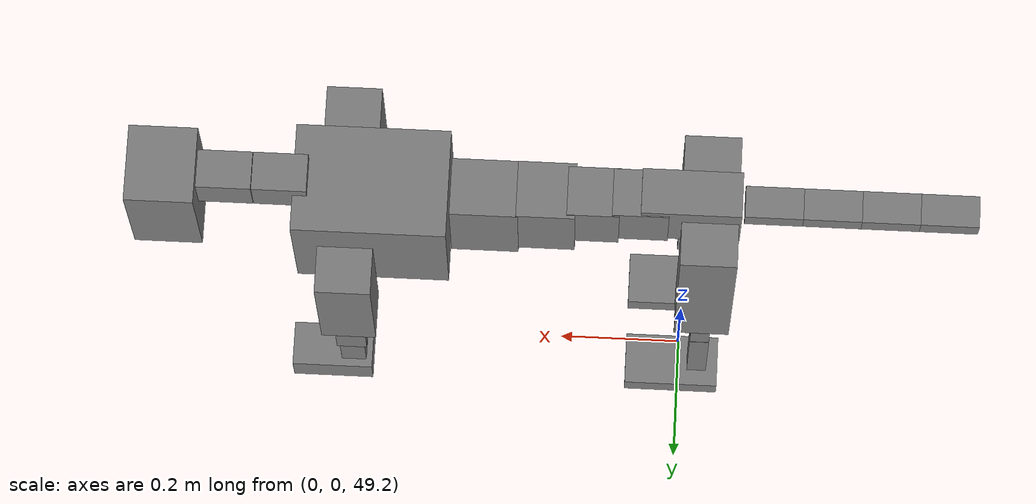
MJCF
<mujoco model="dog">

    <default>
        <joint armature="0.02" stiffness="1" damping="0.2" limited="true"/>
        <geom condim="3" friction="1 0.05 0.05" margin="0.01"/>
        <motor ctrllimited="true" ctrlrange="-1.0 1.0" forcelimited="true" gear="50"/>
    </default>

    <compiler inertiafromgeom="true" angle="radian"/>

    <option timestep="0.016" iterations="50" tolerance="1e-10" solver="Newton" jacobian="dense" cone="pyramidal"/>

    <size nconmax="20000" njmax="60000" nstack="5000000"/>
    <visual>
        <map force="0.1" zfar="30"/>
        <rgba haze="0.15 0.25 0.35 1"/>
        <quality shadowsize="2048"/>
        <global offwidth="800" offheight="800"/>
    </visual>

    <asset>
        <texture type="skybox" builtin="gradient" rgb1="0.3 0.5 0.7" rgb2="0 0 0" width="512" height="512"/>
        <texture name="texplane" type="2d" builtin="checker" rgb1=".2 .3 .4" rgb2=".1 0.15 0.2" width="512" height="512"
                 mark="cross" markrgb=".8 .8 .8"/>
        <texture name="texgeom" type="cube" builtin="flat" mark="cross" width="127" height="1278" rgb1="0.8 0.6 0.4"
                 rgb2="0.8 0.6 0.4" markrgb="1 1 1" random="0.01"/>

        <material name="matplane" reflectance="0.3" texture="texplane" texrepeat="1 1" texuniform="true"/>
        <material name="matgeom" texture="texgeom" texuniform="true" rgba="0.8 0.6 .4 1"/>
    </asset>

    <worldbody>
        <geom name="floor" pos="0 0 0" size="0 0 .25" type="plane" material="matplane" condim="3"/>

        <light directional="false" diffuse=".2 .2 .2" specular="0 0 0" pos="0 0 5" dir="0 0 -1" castshadow="false"/>
        <light mode="targetbodycom" target="torso" directional="false" diffuse=".8 .8 .8" specular="0.3 0.3 0.3"
               pos="0 0 4.0" dir="0 0 -1"/>

        <body name="root" pos="0 0 50">
            <freejoint name="root_1"/>
            <geom type="box" pos="0 0 -0.02" size="0.0774  0.0358  0.063" density="2030"/>

            <body name="spine1" pos="0.054 0 0">
                <joint name="spine1_y" axis="0 1 0" range="0 0.7" limited="true"/>
                <geom type="box" pos="0.02375 0 -0.03" size="0.04375  0.0375  0.05985" density="2030"/>

                <body name="spine2" pos="0.0612 0 0">
                    <joint name="spine2_y" axis="0 1 0" range="-0.15 0.15" limited="true"/>
                    <geom type="box" pos="0.03555  0  -0.04" size="0.04055  0.039  0.06615" density="2030"/>

                    <body name="spine3" pos="0.0730 0 0">
                        <joint name="spine3_y" axis="0 1 0" range="-0.15 0.15" limited="true"/>
                        <geom type="box" pos="0.03555  0  -0.057" size="0.04555  0.0445  0.081" density="2030"/>

                        <body name="spine4" pos="0.0780 0 0">
                            <joint name="spine4_y" axis="0 1 0" range="-0.15 0.15" limited="true"/>
                            <geom type="box" pos="0.05265  0  -0.07" size="0.05265  0.045  0.09135" density="2030"/>

                            <body name="torso" pos="0.1082 0 0">
                                <joint name="torso_y" axis="0 1 0" range="-0.15 0.15" limited="true"/>
                                <geom type="box" pos="0.11925  0  -0.085" size="0.11925  0.085  0.11745"
                                      density="2030"/>

                                <body name="neck1" pos="0.2160  0   0.0180">
                                    <joint name="neck1_y" axis="0 1 0" range="-1.2  -1" limited="true"/>
                                    <geom type="box" pos="0.0423  0  0" size="0.0423  0.03  0.036" density="2325"/>

                                    <body name="neck2" pos="0.0853  0  0">
                                        <joint name="neck2_y" axis="0 1 0" range="0.1  0" limited="true"/>
                                        <geom type="box" pos="0.0423  0  0" size="0.0423  0.03  0.036" density="2325"/>

                                        <body name="head" pos="0.0853  0  0">
                                            <joint name="head_y" axis="0 1 0" range="-0.3  -0.2" limited="true"/>
                                            <geom type="box" pos="0.0531  0  -0.055" size="0.0531  0.06  0.1044"
                                                  density="4030"/>

                                        </body>
                                    </body>
                                </body>

                                <body name="front_shoulder" pos="0.156  0   -0.0480">
                                    <joint name="front_shoulder_y" axis="0 1 0" range="-1 1.5" limited="true"/>
                                    <geom type="box" pos="0 0.13 -0.0946" size="0.0431  0.0368  0.1213" density="1158"/>
                                    <geom type="box" pos="0 -0.13 -0.0946" size="0.0431  0.0368  0.1213"
                                          density="1158"/>

                                    <body name="front_elbow" pos="0  0  -0.1892">
                                        <joint name="front_elbow_y" axis="0 1 0" range="-2 0" limited="true"/>
                                        <geom type="box" pos="0 0.13 -0.0652" size="0.0240  0.0245  0.0652"
                                              density="1081"/>
                                        <geom type="box" pos="0 -0.13 -0.0652" size="0.0240  0.0245  0.0652"
                                              density="1081"/>

                                        <body name="front_wrist" pos="0  0  -0.1304">
                                            <joint name="front_wrist_y" axis="0 1 0" range="-0.2 0" limited="true"/>
                                            <geom type="box" pos="0 0.13 -0.0486" size="0.0199  0.0221  0.0617"
                                                  density="1664"/>
                                            <geom type="box" pos="0 -0.13 -0.0486" size="0.0199  0.0221  0.0617"
                                                  density="1664"/>

                                            <body name="front_finger_end" pos="0  0  -0.0971">
                                                <joint name="front_finger_y" axis="0 1 0" range="-0.4 1"
                                                       limited="true"/>
                                                <geom type="box" pos="0.0351  0.13  -0.0152"
                                                      size="0.0644  0.0351  0.0302" density="1515"/>
                                                <geom type="box" pos="0.0351  -0.13  -0.0152"
                                                      size="0.0644  0.0351  0.0302" density="1515"/>

                                            </body>

                                        </body>
                                    </body>
                                </body>

                            </body>
                        </body>
                    </body>
                </body>
            </body>

            <body name="back_hip" pos="-0.03 0 -0.018">
                <joint name="back_hip_y" axis="0 1 0" range="-1.5 0.3" limited="true"/>
                <geom type="box" pos="0 0.07 -0.1662" size="0.0440  0.0345  0.1890" density="1154"/>
                <geom type="box" pos="0 -0.07 -0.1662" size="0.0440  0.0345  0.1890" density="1154"/>

                <body name="back_knee" pos="0  0  -0.3325">
                    <joint name="back_knee_y" axis="0 1 0" range="0 2.8" limited="true"/>
                    <geom type="box" pos="0 0.07 -0.0763" size="0.0156  0.0154  0.0918" density="1227"/>
                    <geom type="box" pos="0 -0.07 -0.0763" size="0.0156  0.0154  0.0918" density="1227"/>

                    <body name="back_ankle" pos="0  0  -0.1526">
                        <joint name="back_ankle_y" axis="0 1 0" range="-2.2 0" limited="true"/>
                        <geom type="box" pos="0 0.07 -0.0885" size="0.0158  0.0158  0.0997" density="1284"/>
                        <geom type="box" pos="0 -0.07 -0.0885" size="0.0158  0.0158  0.0997" density="1284"/>

                        <body name="back_toe_end" pos="0  0  -0.1769">
                            <joint name="back_toe_y" axis="0 1 0" range="-0.4 1" limited="true"/>
                            <geom type="box" pos="0.0419  0.07  -0.0049" size="0.0768  0.0419  0.0199" density="1515"/>
                            <geom type="box" pos="0.0419  -0.07  -0.0049" size="0.0768  0.0419  0.0199" density="1515"/>

                        </body>
                    </body>
                </body>
            </body>

            <body name="tail1" pos="-0.074 0 -0.006">
                <joint name="tail1_y" axis="0 1 0" range="-0.2 0.2" limited="true"/>
                <geom type="box" pos="-0.0536  0  0" size="0.045  0.025  0.0175" density="1587"/>

                <body name="tail2" pos="-0.09 0 0">
                    <joint name="tail2_y" axis="0 1 0" range="-0.2 0.2" limited="true"/>
                    <geom type="box" pos="-0.0536  0  0" size="0.045  0.025  0.0175" density="1587"/>

                    <body name="tail3" pos="-0.09 0 0">
                        <joint name="tail3_y" axis="0 1 0" range="-0.2 0.2" limited="true"/>
                        <geom type="box" pos="-0.0536  0  0" size="0.045  0.025  0.0175" density="1587"/>

                        <body name="tail4" pos="-0.09 0 0">
                            <joint name="tail4_y" axis="0 1 0" range="-0.2 0.2" limited="true"/>
                            <geom type="box" pos="-0.0536  0  0" size="0.045  0.025  0.0175" density="1587"/>

                        </body>
                    </body>
                </body>
            </body>
        </body>
    </worldbody>

    <actuator>
        <motor joint="spine1_y" forcerange="-150 150     "/>
        <motor joint="spine2_y" forcerange="-150 150     "/>
        <motor joint="spine3_y" forcerange="-150 150     "/>
        <motor joint="spine4_y" forcerange="-150 150     "/>
        <motor joint="torso_y" forcerange="-150 150     "/>
        <motor joint="neck1_y" forcerange="-100 100       "/>
        <motor joint="neck2_y" forcerange="-100 100       "/>
        <motor joint="head_y" forcerange="-150 150       "/>
        <motor joint="front_shoulder_y" forcerange="-190.88 154.52"/>
        <motor joint="front_elbow_y" forcerange="-153.58 124.57"/>
        <motor joint="front_wrist_y" forcerange="-80.71 96.16"/>
        <motor joint="front_finger_y" forcerange="-65.93 81.44"/>
        <motor joint="back_hip_y" forcerange="-357.02 303.09"/>
        <motor joint="back_knee_y" forcerange="-203.96 219.52"/>
        <motor joint="back_angle_y" forcerange="-100.56 52.29"/>
        <motor joint="back_toe_y" forcerange="-122.22 132.87"/>
        <motor joint="tail1_y" forcerange="-50 50     "/>
        <motor joint="tail2_y" forcerange="-50 50     "/>
        <motor joint="tail3_y" forcerange="-50 50     "/>
        <motor joint="tail4_y" forcerange="-50 50     "/>
    </actuator>
</mujoco>
